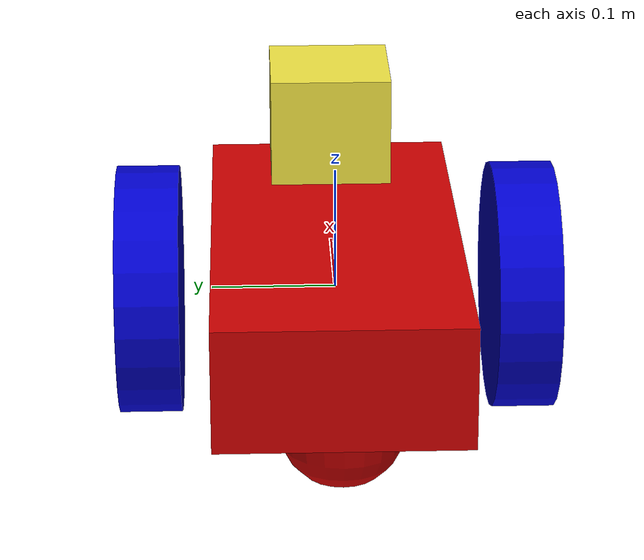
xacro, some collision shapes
<?xml version='1.0'?>

<robot name="my_robot" xmlns:xacro="http://www.ros.org/wiki/xacro">

  <xacro:include filename="$(find my_robot)/urdf/my_robot.gazebo" />

  <link name="robot_footprint"></link>

  <gazebo reference="chassis">
     <material>Gazebo/Red</material>
     <turnGravityOff>false</turnGravityOff>
  </gazebo>

  <gazebo reference="camera">
     <material>Gazebo/Green</material>
     <turnGravityOff>false</turnGravityOff>
  </gazebo>

  <gazebo reference="left_wheel">
     <material>Gazebo/Blue</material>
     <turnGravityOff>false</turnGravityOff>
  </gazebo>

  <gazebo reference="right_wheel">
     <material>Gazebo/Blue</material>
     <turnGravityOff>false</turnGravityOff>
  </gazebo>

  <joint name="hokuyo_joint" type="fixed">
    <origin xyz="0.15 0 0.09" rpy="0 0 0" />
    <axis xyz="0 1 0" rpy="0 0 0"/>
    <parent link="chassis"/>
    <child link="hokuyo" />
  </joint>

  <joint name="robot_footprint_joint" type="fixed">
    <origin xyz="0 0 0" rpy="0 0 0" />
    <parent link="robot_footprint"/>
    <child link="chassis" />
  </joint>

  <joint type="continuous" name="left_wheel_hinge">
    <origin xyz="0 0.15 0" rpy="0 0 0"/>
    <child link="left_wheel"/>
    <parent link="chassis"/>
    <axis xyz="0 1 0" rpy="0 0 0"/>
    <limit effort="10000" velocity="1000"/>
    <dynamics damping="1.0" friction="1.0"/>
  </joint>

   <joint type="continuous" name="right_wheel_hinge">
    <origin xyz="0 -0.15 0" rpy="0 0 0"/>
    <child link="right_wheel"/>
    <parent link="chassis"/>
    <axis xyz="0 1 0" rpy="0 0 0"/>
    <limit effort="10000" velocity="1000"/>
    <dynamics damping="1.0" friction="1.0"/>
  </joint>

  <joint type="fixed" name="camera_joint">
    <origin xyz="0.2 0 0" rpy="0 0 0"/>
    <child link="camera"/>
    <parent link="chassis"/>
    <axis xyz="0 1 0" rpy="0 0 0"/>
  </joint>

  <joint name="camera_optical_joint" type="fixed">
  	  <origin xyz="0 0 0" rpy="-1.5707 0 -1.5707"/>
  	  <parent link="camera"/>
  	  <child link="camera_link_optical"/>
  </joint>

  <link name="camera_link_optical">
  </link>

  <link name='chassis'>
    <pose>0 0 0.1 0 0 0</pose>

    <inertial>
      <mass value="15.0"/>
      <origin xyz="0.0 0 0" rpy=" 0 0 0"/>
      <inertia
          ixx="0.1" ixy="0" ixz="0"
          iyy="0.1" iyz="0"
          izz="0.1"
      />
    </inertial>

    <collision name='collision'>
      <origin xyz="0 0 0" rpy=" 0 0 0"/>
      <geometry>
        <box size=".4 .2 .1"/>
      </geometry>
    </collision>

    <visual name='chassis_visual'>
      <origin xyz="0 0 0" rpy=" 0 0 0"/>
      <geometry>
        <box size=".4 .2 .1"/>
      </geometry>
       <material name="red">
          <color rgba="0.8 0.0 0.0 1.0"/>
      </material>
    </visual>

    <collision name='back_caster_collision'>
      <origin xyz="-0.15 0 -0.05" rpy=" 0 0 0"/>
      <geometry>
        <sphere radius="0.0499"/>
      </geometry>
    </collision>

    <visual name='back_caster_visual'>
      <origin xyz="-0.15 0 -0.05" rpy=" 0 0 0"/>
      <geometry>
        <sphere radius="0.05"/>
      </geometry>
       <material name="red">
          <color rgba="0.8 0 0 1.0"/>
      </material>
    </visual>

    <collision name='front_caster_collision'>
      <origin xyz="0.15 0 -0.05" rpy=" 0 0 0"/>
      <geometry>
        <sphere radius="0.0499"/>
      </geometry>

    </collision>

    <visual name='front_caster_visual'>
      <origin xyz="0.15 0 -0.05" rpy=" 0 0 0"/>
      <geometry>
        <sphere radius="0.05"/>
      </geometry>
       <material name="red">
          <color rgba="0.8 0 0 1.0"/>
      </material>
    </visual>

  </link>

  <link name="hokuyo">
     <inertial>
      <mass value="1e-5"/>
      <inertia
          ixx="1e-6" ixy="0" ixz="0"
          iyy="1e-6" iyz="0"
          izz="1e-6"
      />
    </inertial>

    <visual name='hokuyo_visual'>
      <origin xyz="0 0 0" rpy="0 0 0"/>
      <geometry>
        <mesh filename="package://my_robot/meshes/hokuyo.dae"/>
      </geometry>
    </visual>

    <collision name='hokuyo_collision'>
      <origin xyz="0 0 0" rpy="0 0 0"/>
      <geometry>
        <box size="0.1 0.1 0.1"/>
      </geometry>
    </collision>

  </link>

  <link name="camera">
      <inertial>
      <mass value="0.1"/>
      <inertia
          ixx="1e-6" ixy="0" ixz="0"
          iyy="1e-6" iyz="0"
          izz="1e-6"
      />
    </inertial>

    <visual name='camera_visual'>
      <origin xyz="0 0 0" rpy="0 0 0"/>
      <geometry>
        <box size="0.05 0.05 0.05"/>
      </geometry>
       <material name="green">
          <color rgba="0 0.8 0 1.0"/>
      </material>
    </visual>

    <collision name='camera_collision'>
      <origin xyz="0 0 0" rpy="0 0 0"/>
      <geometry>
        <box size="0.05 0.05 0.05"/>
      </geometry>
    </collision>

  </link>

  <link name='left_wheel'>

  	<inertial>
      <mass value="5.0"/>
      <inertia
          ixx="0.1" ixy="0" ixz="0"
          iyy="0.1" iyz="0"
          izz="0.1"
      />
    </inertial>

    <visual name='left_wheel_visual'>
      <origin xyz="0 0 0" rpy=" 1.5707 1.5707 0"/>
      <geometry>
        <cylinder radius=".1" length="0.05"/>
      </geometry>
       <material name="blue">
          <color rgba="0 0 0.8 1.0"/>
      </material>
    </visual>

    <collision name='left_wheel_collision'>
      <origin xyz="0 0 0" rpy=" 1.5707 1.5707 0"/>
      <geometry>
        <cylinder radius="0.1" length="0.05"/>
      </geometry>
    </collision>

  </link>

  <link name='right_wheel'>
     <inertial>
      <mass value="5.0"/>
      <inertia
          ixx="0.1" ixy="0" ixz="0"
          iyy="0.1" iyz="0"
          izz="0.1"
      />
    </inertial>

     <visual name='right_wheel_visual'>
      <origin xyz="0 0 0" rpy=" 1.5707 1.5707 0"/>
      <geometry>
        <cylinder radius=".1" length="0.05"/>
      </geometry>
      <material name="blue">
          <color rgba="0 0 0.8 1.0"/>
      </material>

    </visual>

     <collision name='right_wheel_collision'>
      <origin xyz="0 0 0" rpy=" 1.5707 1.5707 0"/>
      <geometry>
        <cylinder radius="0.1" length="0.05"/>
      </geometry>
    </collision>

  </link>

</robot>
